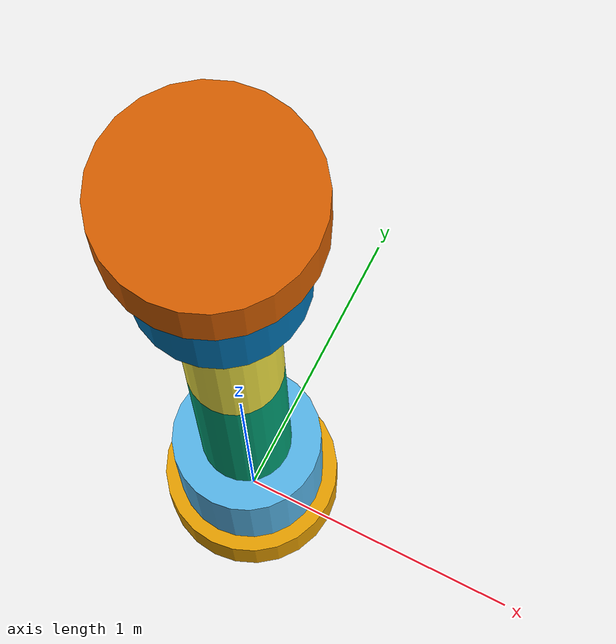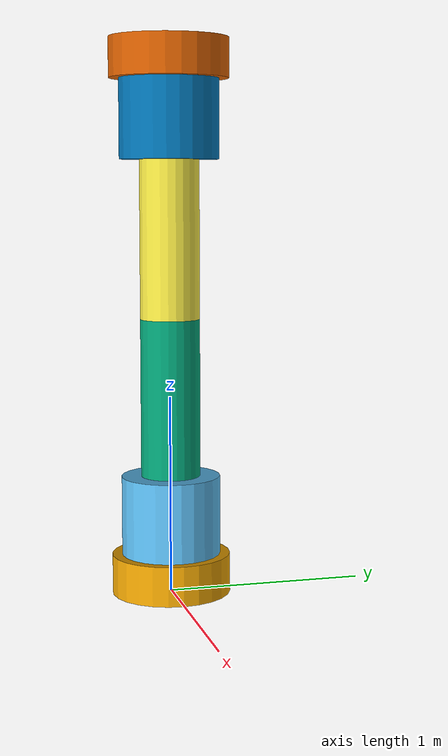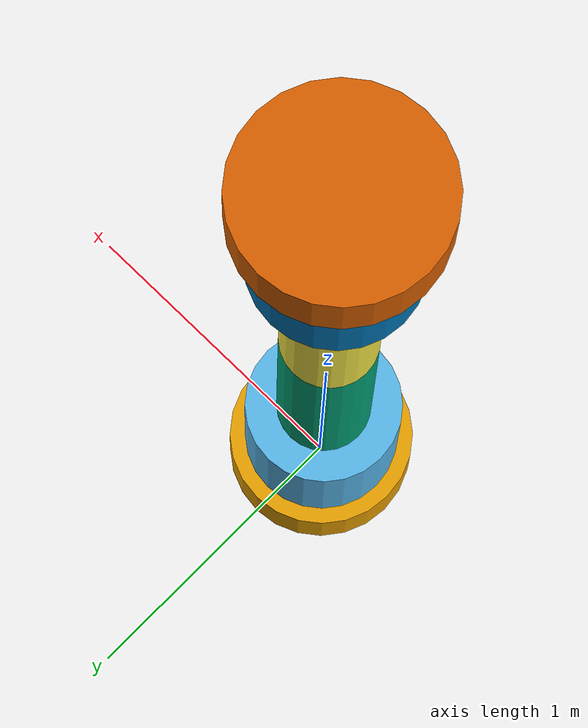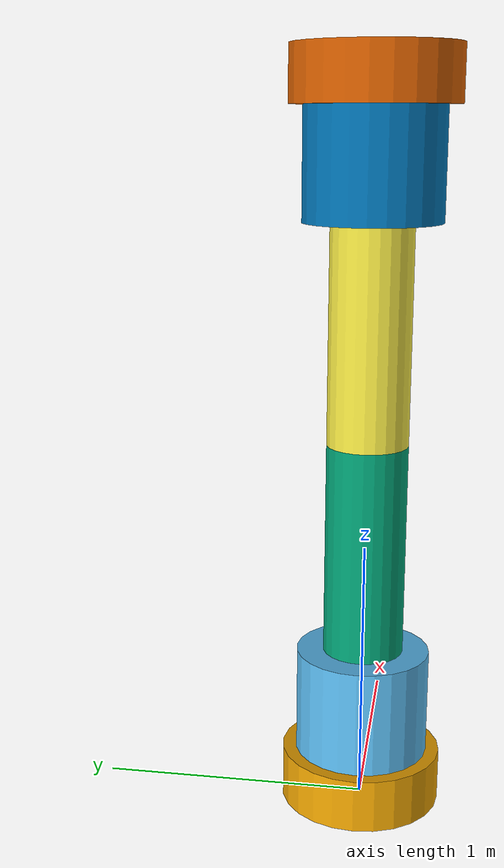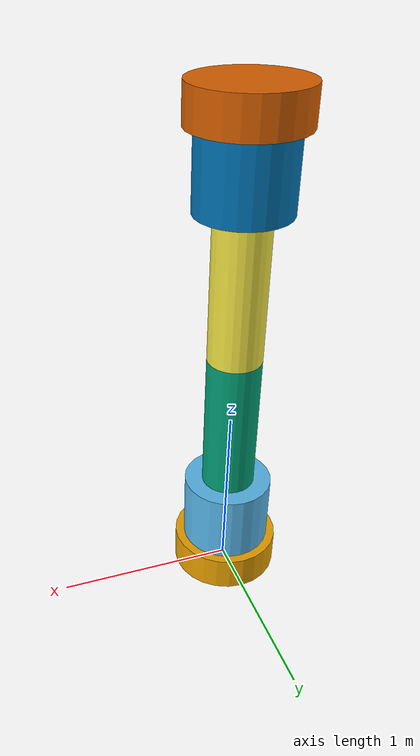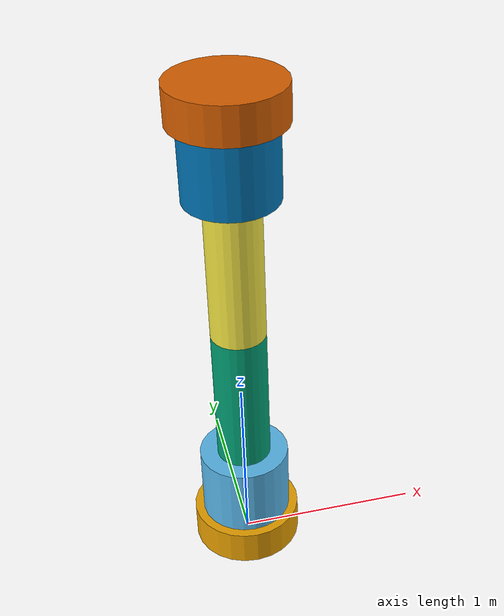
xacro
<?xml version="1.0"?>
<robot xmlns:xacro="http://www.ros.org/wiki/xacro" name="b47">
    <link name="base_link">
        <inertial>
            <origin xyz="0.0 0.0 0.1" rpy="0.0 0.0 0.0" />
            <mass value="2" />
            <inertia ixx="0.05166666666666667" ixy="0.0" ixz="0.0" iyy="0.05166666666666667" iyz="0.0" izz="0.09" />
        </inertial>
        <visual>
            <origin xyz="0.0 0.0 0.1" rpy="0.0 0.0 0.0" />
            <geometry>
                <cylinder radius="0.30" length="0.2"/>
            </geometry>
        </visual>
        <collision>
            <origin xyz="0.0 0.0 0.1" rpy="0.0 0.0 0.0" />
            <geometry>
                <cylinder radius="0.30" length="0.2"/>
            </geometry>
        </collision>
    </link>
    <link name="link_01">
        <inertial>
            <origin xyz="0.0 0.0 0.2" rpy="0.0 0.0 0.0" />
            <mass value="3" />
            <inertia ixx="0.08687500000000001" ixy="0.0" ixz="0.0" iyy="0.08687500000000001" iyz="0.0" izz="0.09375"/>
        </inertial>
        <visual>
            <origin xyz="0.0 0.0 0.2" rpy="0.0 0.0 0.0" />
            <geometry>
                <cylinder radius="0.25" length="0.4" />
            </geometry>
        </visual>
        <collision>
            <origin xyz="0.0 0.0 0.2" rpy="0.0 0.0 0.0" />
            <geometry>
                <cylinder radius="0.25" length="0.4" />
            </geometry>
        </collision>
    </link>
    <joint name="base_link_link_01" type="revolute">
        <parent link="base_link" />
        <child link="link_01" />
        <axis xyz="0 0 1" />
        <limit lower="-3.14159" upper="3.14159" velocity="0.5" effort="10000.0" />
        <origin xyz="0 0 0.2" rpy="0 0 0" />
    </joint>
    <link name="link_02">
        <inertial>
            <origin xyz="0.0 0.0 0.4" rpy="0.0 0.0 0.0" />
            <mass value="3" />
            <inertia ixx="0.17687500000000003" ixy="0.0" ixz="0.0" iyy="0.17687500000000003" iyz="0.0" izz="0.03375" />
        </inertial>
        <visual>
            <origin xyz="0.0 0.0 0.4" rpy="0.0 0.0 0" />
            <geometry>
                <cylinder radius="0.15" length="0.8" />
            </geometry>
        </visual>
        <collision>
            <origin xyz="0.0 0.0 0.4" rpy="0.0 0.0 0.0" />
            <geometry>
                <cylinder radius="0.15" length="0.8" />
            </geometry>
        </collision>
    </link>
    <joint name="link_01_link_02" type="revolute">
        <parent link="link_01" />
        <child link="link_02" />
        <axis xyz="0 1 0" />
        <limit lower="-3.14159" upper="3.14159" velocity="0.5" effort="10000.0" />
        <origin xyz="0 0 0.4" rpy="0 0 0" />
    </joint>
    <link name="link_03">
        <inertial>
            <origin xyz="0.0 0.0 0.4" rpy="0.0 0.0 0.0" />
            <mass value="3" />
            <inertia ixx="0.17687500000000003" ixy="0.0" ixz="0.0" iyy="0.17687500000000003" iyz="0.0" izz="0.03375" />
        </inertial>
        <visual>
            <origin xyz="0.0 0.0 0.4" rpy="0.0 0.0 0" />
            <geometry>
                <cylinder radius="0.15" length="0.8" />
            </geometry>
        </visual>
        <collision>
            <origin xyz="0.0 0.0 0.4" rpy="0.0 0.0 0.0" />
            <geometry>
                <cylinder radius="0.15" length="0.8" />
            </geometry>
        </collision>
    </link>
     <joint name="link_02_link_03" type="revolute">
        <parent link="link_02" />
        <child link="link_03" />
        <axis xyz="0 1 0" />
        <limit lower="-3.14159" upper="3.14159" velocity="0.5" effort="10000.0" />
        <origin xyz="0 0 0.8" rpy="0 0 0" />
    </joint>
    <link name="link_04">
        <inertial>
            <origin xyz="0.0 0.0 0.2" rpy="0.0 0.0 0.0" />
            <mass value="3" />
            <inertia ixx="0.08687500000000001" ixy="0.0" ixz="0.0" iyy="0.08687500000000001" iyz="0.0" izz="0.09375"/>
        </inertial>
        <visual>
            <origin xyz="0.0 0.0 0.2" rpy="0.0 0.0 0.0" />
            <geometry>
                <cylinder radius="0.25" length="0.4" />
            </geometry>
        </visual>
        <collision>
            <origin xyz="0.0 0.0 0.2" rpy="0.0 0.0 0.0" />
            <geometry>
                <cylinder radius="0.25" length="0.4" />
            </geometry>
        </collision>
    </link>
    <joint name="link_03_link_04" type="revolute">
        <parent link="link_03" />
        <child link="link_04" />
        <axis xyz="0 1 0" />
        <limit lower="-3.14159" upper="3.14159" velocity="0.5" effort="10000.0" />
        <origin xyz="0 0 0.8" rpy="0 0 0" />
    </joint>
    <link name="link_05">
        <inertial>
            <origin xyz="0.0 0.0 0.1" rpy="0.0 0.0 0.0" />
            <mass value="2" />
            <inertia ixx="0.05166666666666667" ixy="0.0" ixz="0.0" iyy="0.05166666666666667" iyz="0.0" izz="0.09" />
        </inertial>
        <visual>
            <origin xyz="0.0 0.0 0.1" rpy="0.0 0.0 0.0" />
            <geometry>
                <cylinder radius="0.30" length="0.2"/>
            </geometry>
        </visual>
        <collision>
            <origin xyz="0.0 0.0 0.1" rpy="0.0 0.0 0.0" />
            <geometry>
                <cylinder radius="0.30" length="0.2"/>
            </geometry>
        </collision>
    </link>
    <joint name="link_04_link_05" type="revolute">
        <parent link="link_04" />
        <child link="link_05" />
        <axis xyz="0 0 1" />
        <limit lower="-3.14159" upper="3.14159" velocity="0.5" effort="10000.0" />
        <origin xyz="0 0 0.4" rpy="0 0 0" />
    </joint>
    <transmission name="trans_base_link_link_01">
        <type>transmission_interface/SimpleTransmission</type>
        <joint name="base_link_link_01">
            <hardwareInterface>hardware_interface/EffortJointInterface</hardwareInterface>
        </joint>
        <actuator name="motor_base_link_link_01">
            <mechanicalReduction>1.0</mechanicalReduction>
            <hardwareInterface>hardware_interface/EffortJointInterface</hardwareInterface>
        </actuator>
    </transmission>

    <transmission name="trans_link_01_link_02">
        <type>transmission_interface/SimpleTransmission</type>
        <joint name="link_01_link_02">
            <hardwareInterface>hardware_interface/EffortJointInterface</hardwareInterface>
        </joint>
        <actuator name="motor_link_01_link_02">
            <mechanicalReduction>1.0</mechanicalReduction>
            <hardwareInterface>hardware_interface/EffortJointInterface</hardwareInterface>
        </actuator>
    </transmission>
    <transmission name="trans_link_02_link_03">
        <type>transmission_interface/SimpleTransmission</type>
        <joint name="link_02_link_03">
            <hardwareInterface>hardware_interface/EffortJointInterface</hardwareInterface>
        </joint>
        <actuator name="motor_link_02_link_03">
            <mechanicalReduction>1.0</mechanicalReduction>
            <hardwareInterface>hardware_interface/EffortJointInterface</hardwareInterface>
        </actuator>
    </transmission>

    <transmission name="trans_link_03_link_04">
        <type>transmission_interface/SimpleTransmission</type>
        <joint name="link_03_link_04">
            <hardwareInterface>hardware_interface/EffortJointInterface</hardwareInterface>
        </joint>
        <actuator name="motor_link_03_link_04">
            <mechanicalReduction>1.0</mechanicalReduction>
            <hardwareInterface>hardware_interface/EffortJointInterface</hardwareInterface>
        </actuator>
    </transmission>
    <transmission name="trans_link_04_link_05">
        <type>transmission_interface/SimpleTransmission</type>
        <joint name="link_04_link_05">
            <hardwareInterface>hardware_interface/EffortJointInterface</hardwareInterface>
        </joint>
        <actuator name="motor_link_04_link_05">
            <mechanicalReduction>1.0</mechanicalReduction>
            <hardwareInterface>hardware_interface/EffortJointInterface</hardwareInterface>
        </actuator>
    </transmission>

    <gazebo>
        <plugin name="gazebo_ros_control" filename="libgazebo_ros_control.so">
        </plugin>
    </gazebo>
</robot>
